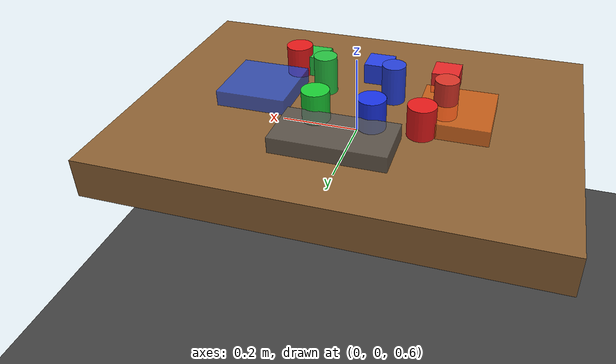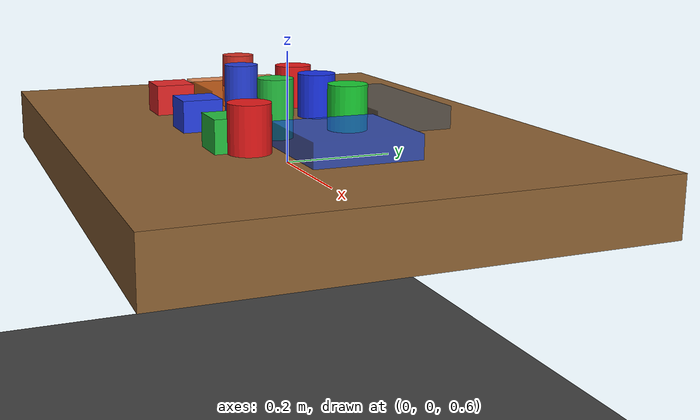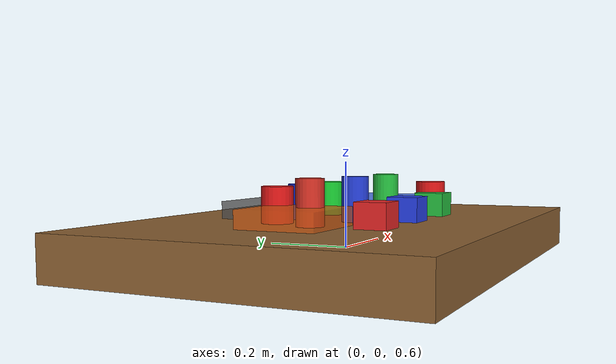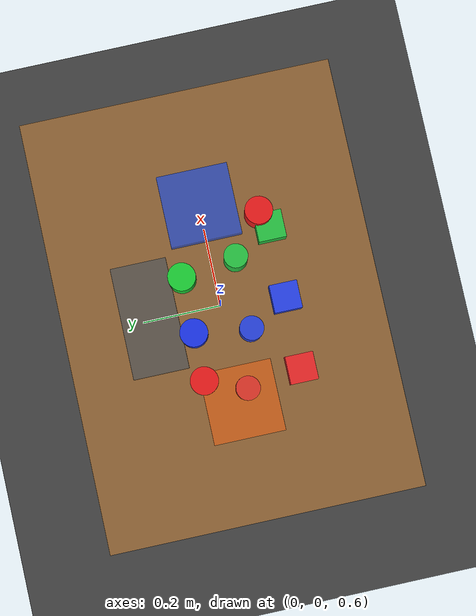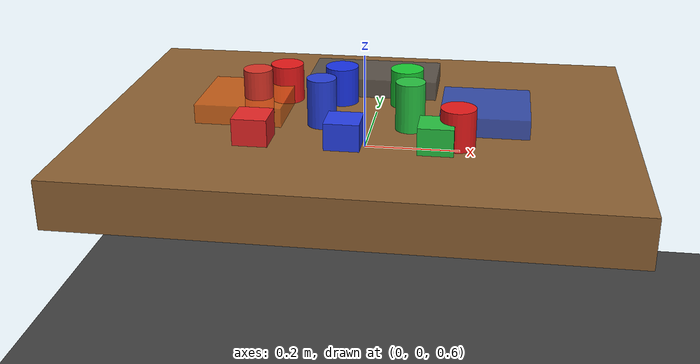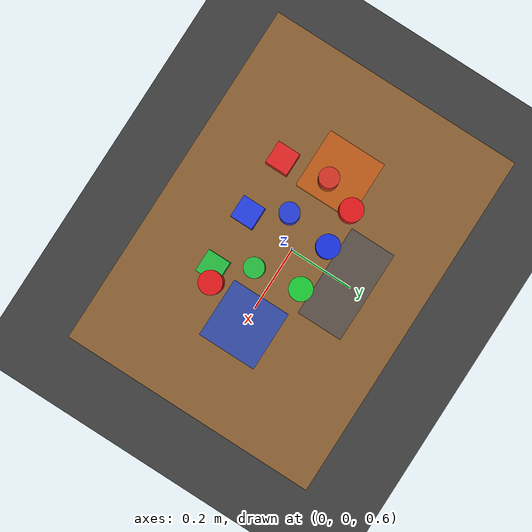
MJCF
<mujoco model="tangying_tabletop">
  <option timestep="0.002" gravity="0 0 -9.81" />
  <visual>
    <global offwidth="640" offheight="480" />
  </visual>
  <worldbody>
    <light pos="0 0 2" />
    <geom name="floor" type="plane" size="2 2 0.1" rgba="0.25 0.25 0.25 1" />
    <body name="table" pos="0 0 0.62">
      <geom type="box" size="0.55 0.4 0.05" rgba="0.55 0.38 0.2 1" />
    </body>
    <body name="red_cup" pos="-0.18 0.08 0.69">
      <freejoint name="red_cup_free" />
      <geom type="cylinder" size="0.035 0.06" mass="0.12" rgba="0.9 0.1 0.1 1" />
    </body>
    <body name="blue_cup" pos="-0.06 0.08 0.69">
      <freejoint name="blue_cup_free" />
      <geom type="cylinder" size="0.035 0.06" mass="0.12" rgba="0.1 0.2 0.9 1" />
    </body>
    <body name="green_cup" pos="0.08 0.08 0.69">
      <freejoint name="green_cup_free" />
      <geom type="cylinder" size="0.035 0.06" mass="0.12" rgba="0.1 0.8 0.2 1" />
    </body>
    <body name="red_cup_2" pos="0.20 -0.14 0.69">
      <freejoint name="red_cup_2_free" />
      <geom type="cylinder" size="0.035 0.06" mass="0.12" rgba="0.9 0.1 0.1 1" />
    </body>
    <body name="red_bottle" pos="-0.22 -0.02 0.69">
      <freejoint name="red_bottle_free" />
      <geom type="cylinder" size="0.03 0.08" mass="0.15" rgba="0.85 0.2 0.15 1" />
    </body>
    <body name="blue_bottle" pos="-0.08 -0.06 0.69">
      <freejoint name="blue_bottle_free" />
      <geom type="cylinder" size="0.03 0.08" mass="0.15" rgba="0.15 0.25 0.85 1" />
    </body>
    <body name="green_bottle" pos="0.10 -0.06 0.69">
      <freejoint name="green_bottle_free" />
      <geom type="cylinder" size="0.03 0.08" mass="0.15" rgba="0.15 0.75 0.25 1" />
    </body>
    <body name="red_block" pos="-0.20 -0.16 0.69">
      <freejoint name="red_block_free" />
      <geom type="box" size="0.035 0.035 0.035" mass="0.1" rgba="0.9 0.15 0.15 1" />
    </body>
    <body name="blue_block" pos="-0.02 -0.16 0.69">
      <freejoint name="blue_block_free" />
      <geom type="box" size="0.035 0.035 0.035" mass="0.1" rgba="0.15 0.25 0.9 1" />
    </body>
    <body name="green_block" pos="0.16 -0.16 0.69">
      <freejoint name="green_block_free" />
      <geom type="box" size="0.035 0.035 0.035" mass="0.1" rgba="0.15 0.75 0.25 1" />
    </body>
    <body name="right_bin" pos="0.25 0 0.69">
      <geom type="box" size="0.09 0.09 0.02" rgba="0.1 0.3 0.9 0.7" contype="0" conaffinity="0" />
    </body>
    <body name="left_bin" pos="-0.25 0 0.69">
      <geom type="box" size="0.09 0.09 0.02" rgba="0.9 0.4 0.1 0.7" contype="0" conaffinity="0" />
    </body>
    <body name="front_tray" pos="0 0.18 0.69">
      <geom type="box" size="0.14 0.07 0.02" rgba="0.35 0.35 0.35 0.8" contype="0" conaffinity="0" />
    </body>
  </worldbody>
</mujoco>
